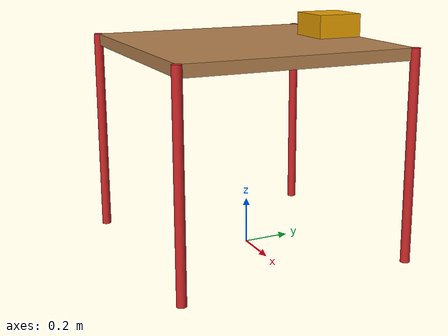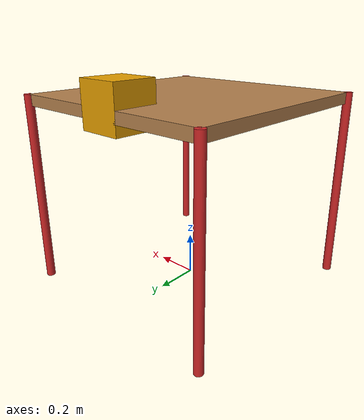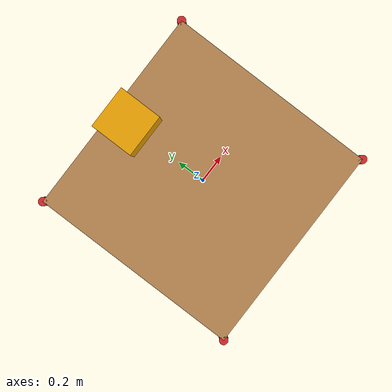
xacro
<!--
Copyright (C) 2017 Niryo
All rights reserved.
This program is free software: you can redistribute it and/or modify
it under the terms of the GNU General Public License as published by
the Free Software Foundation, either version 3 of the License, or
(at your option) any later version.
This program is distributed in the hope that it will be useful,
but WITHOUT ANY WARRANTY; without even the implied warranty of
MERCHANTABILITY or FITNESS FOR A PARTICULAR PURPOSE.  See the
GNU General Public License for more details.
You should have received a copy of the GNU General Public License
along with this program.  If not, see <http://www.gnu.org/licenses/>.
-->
<?xml version="1.0"?>
<robot xmlns:xacro="http://www.ros.org/wiki/xacro" name="table">

  <property name="table_height" value="0.9" />
  <property name="table_width" value="1.0" />
  <property name="table_depth" value="1.0" />
  <property name="leg_radius" value="0.02" />
  <property name="table_x" value="0.0" />
  <property name="table_y" value="0.0" />
  <property name="table_z" value="0.0" />

  <property name="table_top_thickness" value="0.05"/>

  <property name="M_PI" value="3.1415926535897931" />

  <!-- tabletop height is .55+.01+.025=.585 -->
  <link name="box_1">
  <inertial>
      <mass value="0.5" />
      <origin xyz="0.4 0 0.875" />
      <inertia ixx="1" ixy="0"  ixz="0"
               iyy="1" iyz="0"
               izz="1" />
    </inertial>
  <visual>
      <origin xyz="0 0 0" />
      <geometry>
        <box size="0.2 0.2 0.2" />
      </geometry>
    </visual>
    <collision>
      <origin xyz="0 0 0" />
      <geometry>
        <box size="0.2 0.2 0.2" />
      </geometry>
    </collision>
  </link>
  <link name="table_top_link">
    <inertial>
      <mass value="1.0" />
      <origin xyz="${table_x} ${table_y} ${table_z+table_height-table_top_thickness/2}" />
      <inertia ixx="1" ixy="0"  ixz="0"
               iyy="1" iyz="0"
               izz="1" />
    </inertial>
    <visual>
      <origin xyz="${table_x} ${table_y} ${table_z+table_height-table_top_thickness/2}" />
      <geometry>
        <box size="${table_width} ${table_depth} ${table_top_thickness}" />
      </geometry>
    </visual>
    <collision>
      <origin xyz="${table_x} ${table_y} ${table_z+table_height-table_top_thickness/2}" />
      <geometry>
        <box size="${table_width} ${table_depth} ${table_top_thickness}" />
      </geometry>
    </collision>
  </link>
  <gazebo reference="table_top_link">
    <material>Gazebo/Wood</material>
    <mu1>50.0</mu1>
    <mu2>50.0</mu2>
    <kp>1000000.0</kp>
    <kd>1.0</kd>
  </gazebo>
   <joint name="box_table" type="fixed" >
    <parent link="table_top_link" />
    <origin xyz="0 0.4 ${table_z+table_height}" rpy="0 0 0" />
    <child link="box_1" />
  </joint>

  <joint name="leg1_joint" type="fixed" >
    <parent link="table_top_link" />
    <origin xyz="${table_x+table_width/2} ${table_y+table_depth/2} ${table_z+table_height}" rpy="0 0 0" />
    <child link="leg1_link" />
  </joint>
  <link name="leg1_link">
    <inertial>
      <mass value="1.0" />
      <origin xyz="0 0 ${-table_height/2}" />
      <inertia ixx="0.1" ixy="0"  ixz="0"
               iyy="0.1" iyz="0"
               izz="0.01" />
    </inertial>
    <visual>
      <origin xyz="0.0 0.0 ${-table_height/2}" rpy="0 0 0" />
      <geometry>
        <cylinder radius="${leg_radius}" length="${table_height}" />
      </geometry>
    </visual>
    <collision>
      <origin xyz="0.0 0.0 ${-table_height/2}" rpy="0.0 0.0 0.0" />
      <geometry>
        <cylinder radius="${leg_radius}" length="${table_height}" />
      </geometry>
    </collision>
  </link>
  <gazebo reference="leg1_link">
    <material>Gazebo/Red</material>
    <mu1>1000.0</mu1>
    <mu2>1000.0</mu2>
    <kp>10000000.0</kp>
    <kd>1.0</kd>
  </gazebo>

  <joint name="leg2_joint" type="fixed" >
    <parent link="table_top_link" />
    <origin xyz="${table_x-table_width/2} ${table_y+table_depth/2} ${table_z+table_height}" rpy="0 0 0" />
    <child link="leg2_link" />
  </joint>
  <link name="leg2_link">
    <inertial>
      <mass value="1.0" />
      <origin xyz="0 0 ${-table_height/2}" />
      <inertia ixx="0.1" ixy="0"  ixz="0"
               iyy="0.1" iyz="0"
               izz="0.01" />
    </inertial>
    <visual>
      <origin xyz="0.0 0.0 ${-table_height/2}" rpy="0 0 0" />
      <geometry>
        <cylinder radius="${leg_radius}" length="${table_height}" />
      </geometry>
    </visual>
    <collision>
      <origin xyz="0.0 0.0 ${-table_height/2}" rpy="0.0 0.0 0.0" />
      <geometry>
        <cylinder radius="${leg_radius}" length="${table_height}" />
      </geometry>
    </collision>
  </link>
  <gazebo reference="leg2_link">
    <material>Gazebo/Red</material>
    <mu1>1000.0</mu1>
    <mu2>1000.0</mu2>
    <kp>10000000.0</kp>
    <kd>1.0</kd>
  </gazebo>

  <joint name="leg3_joint" type="fixed" >
    <parent link="table_top_link" />
    <origin xyz="${table_x+table_width/2} ${table_y-table_depth/2} ${table_z+table_height}" rpy="0 0 0" />
    <child link="leg3_link" />
  </joint>
  <link name="leg3_link">
    <inertial>
      <mass value="1.0" />
      <origin xyz="0 0 ${-table_height/2}" />
      <inertia ixx="0.1" ixy="0"  ixz="0"
               iyy="0.1" iyz="0"
               izz="0.01" />
    </inertial>
    <visual>
      <origin xyz="0.0 0.0 ${-table_height/2}" rpy="0 0 0" />
      <geometry>
        <cylinder radius="${leg_radius}" length="${table_height}" />
      </geometry>
    </visual>
    <collision>
      <origin xyz="0.0 0.0 ${-table_height/2}" rpy="0.0 0.0 0.0" />
      <geometry>
        <cylinder radius="${leg_radius}" length="${table_height}" />
      </geometry>
    </collision>
  </link>
  <gazebo reference="leg3_link">
    <material>Gazebo/Red</material>
    <mu1>1000.0</mu1>
    <mu2>1000.0</mu2>
    <kp>10000000.0</kp>
    <kd>1.0</kd>
  </gazebo>

  <joint name="leg4_joint" type="fixed" >
    <parent link="table_top_link" />
    <origin xyz="${table_x-table_width/2} ${table_y-table_depth/2} ${table_z+table_height}" rpy="0 0 0" />
    <child link="leg4_link" />
  </joint>
  <link name="leg4_link">
    <inertial>
      <mass value="1.0" />
      <origin xyz="0 0 ${-table_height/2}" />
      <inertia ixx="0.1" ixy="0"  ixz="0"
               iyy="0.1" iyz="0"
               izz="0.01" />
    </inertial>
    <visual>
      <origin xyz="0.0 0.0 ${-table_height/2}" rpy="0 0 0" />
      <geometry>
        <cylinder radius="${leg_radius}" length="${table_height}" />
      </geometry>
    </visual>
    <collision>
      <origin xyz="0.0 0.0 ${-table_height/2}" rpy="0.0 0.0 0.0" />
      <geometry>
        <cylinder radius="${leg_radius}" length="${table_height}" />
      </geometry>
    </collision>
  </link>
  <gazebo reference="leg4_link">
    <material>Gazebo/Red</material>
    <mu1>1000.0</mu1>
    <mu2>1000.0</mu2>
    <kp>10000000.0</kp>
    <kd>1.0</kd>
  </gazebo>
  <gazebo>
    <static>true</static>
    <canonicalBody>table_top_link</canonicalBody>
  </gazebo>

</robot>
